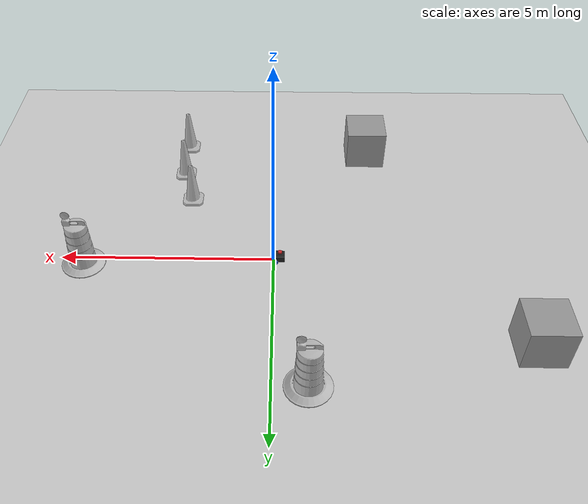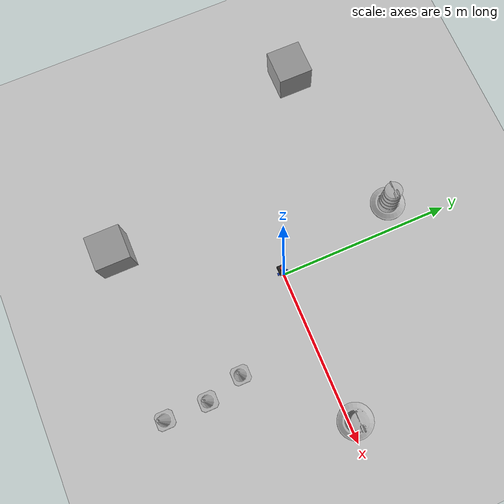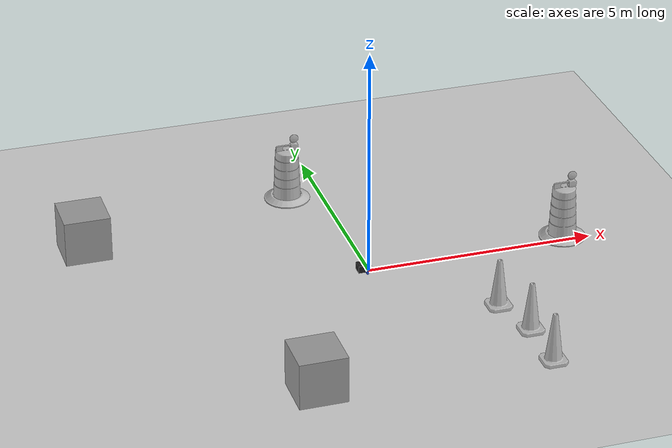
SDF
<sdf version="1.7">
 <world name="default">
  <light name="sun" type="directional">
   <pose>0 0 10 0 -0 0</pose>
   <diffuse>0.8 0.8 0.8 1</diffuse>
   <specular>0.2 0.2 0.2 1</specular>
   <attenuation>
    <range>1000</range>
    <constant>0.9</constant>
    <linear>0.01</linear>
    <quadratic>0.001</quadratic>
   </attenuation>
   <direction>-0.5 0.1 -0.9</direction>
   <spot><inner_angle>0</inner_angle><outer_angle>0</outer_angle><falloff>0</falloff></spot>
  </light>
  <model name="ground_plane">
   <static>1</static>
   <link name="link">
    <collision name="collision">
     <geometry><plane><normal>0 0 1</normal><size>100 100</size></plane></geometry>
     <surface>
      <contact><collide_bitmask>65535</collide_bitmask></contact>
      <friction><ode><mu>100</mu><mu2>50</mu2></ode></friction>
     </surface>
    </collision>
    <visual name="visual">
     <cast_shadows>0</cast_shadows>
     <geometry><plane><normal>0 0 1</normal><size>100 100</size></plane></geometry>
     <material>
      <script><uri>file://media/materials/scripts/gazebo.material</uri><name>Gazebo/Grey</name></script>
     </material>
    </visual>
   </link>
  </model>
  <gravity>0 0 -9.8</gravity>
  <magnetic_field>6e-06 2.3e-05 -4.2e-05</magnetic_field>
  <atmosphere type="adiabatic"/>
  <physics type="ode">
   <max_step_size>0.001</max_step_size>
   <real_time_factor>1</real_time_factor>
   <real_time_update_rate>1000</real_time_update_rate>
  </physics>
  <scene><ambient>0.4 0.4 0.4 1</ambient><background>0.7 0.7 0.7 1</background><shadows>1</shadows></scene>
  <spherical_coordinates>
   <surface_model>EARTH_WGS84</surface_model>
   <latitude_deg>0</latitude_deg>
   <longitude_deg>0</longitude_deg>
   <elevation>0</elevation>
   <heading_deg>0</heading_deg>
  </spherical_coordinates>
  <model name="Construction Barrel">
   <link name="link">
    <inertial>
     <pose>0 0 0.4 0 -0 0</pose>
     <mass>500</mass>
     <inertia><ixx>51.2096</ixx><iyy>51.2096</iyy><izz>25</izz><ixy>0</ixy><ixz>0</ixz><iyz>0</iyz></inertia>
    </inertial>
    <collision name="collision">
     <geometry><mesh><uri>model://construction_barrel/meshes/construction_barrel.dae</uri></mesh></geometry>
    </collision>
    <visual name="visual">
     <geometry><mesh><uri>model://construction_barrel/meshes/construction_barrel.dae</uri></mesh></geometry>
    </visual>
   </link>
   <pose>-0.750686 3.60602 -1e-06 0 5e-06 -0.002246</pose>
  </model>
  <model name="Construction Barrel_0">
   <link name="link">
    <inertial>
     <pose>0 0 0.4 0 -0 0</pose>
     <mass>500</mass>
     <inertia><ixx>51.2096</ixx><iyy>51.2096</iyy><izz>25</izz><ixy>0</ixy><ixz>0</ixz><iyz>0</iyz></inertia>
    </inertial>
    <collision name="collision">
     <geometry><mesh><uri>model://construction_barrel/meshes/construction_barrel.dae</uri></mesh></geometry>
    </collision>
    <visual name="visual">
     <geometry><mesh><uri>model://construction_barrel/meshes/construction_barrel.dae</uri></mesh></geometry>
    </visual>
   </link>
   <pose>4.44163 0.174305 0 0 0 -3.7e-05</pose>
  </model>
  <model name="Construction Cone_2">
   <link name="link">
    <collision name="collision">
     <geometry>
      <mesh><scale>10 10 10</scale><uri>model://construction_cone/meshes/construction_cone.dae</uri></mesh>
     </geometry>
    </collision>
    <visual name="visual">
     <geometry>
      <mesh><scale>10 10 10</scale><uri>model://construction_cone/meshes/construction_cone.dae</uri></mesh>
     </geometry>
    </visual>
    <inertial>
     <inertia><ixx>1</ixx><ixy>0</ixy><ixz>0</ixz><iyy>1</iyy><iyz>0</iyz><izz>1</izz></inertia>
     <mass>1</mass>
    </inertial>
   </link>
   <pose>2.09724 -2.18232 -0 0 -0 0</pose>
  </model>
  <model name="Construction Cone_5">
   <link name="link">
    <collision name="collision">
     <geometry>
      <mesh><scale>10 10 10</scale><uri>model://construction_cone/meshes/construction_cone.dae</uri></mesh>
     </geometry>
    </collision>
    <visual name="visual">
     <geometry>
      <mesh><scale>10 10 10</scale><uri>model://construction_cone/meshes/construction_cone.dae</uri></mesh>
     </geometry>
    </visual>
    <inertial>
     <inertia><ixx>1</ixx><ixy>0</ixy><ixz>0</ixz><iyy>1</iyy><iyz>0</iyz><izz>1</izz></inertia>
     <mass>1</mass>
    </inertial>
   </link>
   <pose>2.38815 -3.2576 -0 0 -1e-06 0</pose>
  </model>
  <model name="Construction Cone_6">
   <link name="link">
    <collision name="collision">
     <geometry>
      <mesh><scale>10 10 10</scale><uri>model://construction_cone/meshes/construction_cone.dae</uri></mesh>
     </geometry>
    </collision>
    <visual name="visual">
     <geometry>
      <mesh><scale>10 10 10</scale><uri>model://construction_cone/meshes/construction_cone.dae</uri></mesh>
     </geometry>
    </visual>
    <inertial>
     <inertia><ixx>1</ixx><ixy>0</ixy><ixz>0</ixz><iyy>1</iyy><iyz>0</iyz><izz>1</izz></inertia>
     <mass>1</mass>
    </inertial>
   </link>
   <pose>2.39316 -4.49605 -0 0 -0 0</pose>
  </model>
  <model name="my_bot">
   <link name="base_link">
    <inertial>
     <pose>-0.069279 0 0.091303 0 -0 0</pose>
     <mass>0.61</mass>
     <inertia>
      <ixx>0.00488911</ixx>
      <ixy>0</ixy>
      <ixz>0.000187143</ixz>
      <iyy>0.00563201</iyy>
      <iyz>0</iyz>
      <izz>0.00479238</izz>
     </inertia>
    </inertial>
    <collision name="base_link_fixed_joint_lump__chassis_collision">
     <pose>-0.065 0 0.07 0 -0 0</pose>
     <geometry><box><size>0.252 0.217 0.16</size></box></geometry>
    </collision>
    <collision name="base_link_fixed_joint_lump__caster_wheel_collision_1">
     <pose>-0.116 0 -0.0305 0 -0 0</pose>
     <geometry><sphere><radius>0.01</radius></sphere></geometry>
     <surface><friction><ode><mu>0.001</mu><mu2>0.001</mu2></ode></friction></surface>
    </collision>
    <collision name="base_link_fixed_joint_lump__laser_frame_collision_2">
     <pose>-0.086 0 0.21 0 -0 0</pose>
     <geometry><cylinder><length>0.04</length><radius>0.05</radius></cylinder></geometry>
    </collision>
    <visual name="base_link_fixed_joint_lump__chassis_visual">
     <pose>-0.065 0 0.07 0 -0 0</pose>
     <geometry><box><size>0.252 0.217 0.16</size></box></geometry>
     <material>
      <script><name>Gazebo/Black</name><uri>file://media/materials/scripts/gazebo.material</uri></script>
     </material>
    </visual>
    <visual name="base_link_fixed_joint_lump__camera_link_visual_1">
     <pose>0.114 0 0.07 0 -0 0</pose>
     <geometry><box><size>0.01 0.03 0.03</size></box></geometry>
     <material>
      <script><name>Gazebo/Red</name><uri>file://media/materials/scripts/gazebo.material</uri></script>
     </material>
    </visual>
    <visual name="base_link_fixed_joint_lump__caster_wheel_visual_2">
     <pose>-0.116 0 -0.0305 0 -0 0</pose>
     <geometry><sphere><radius>0.01</radius></sphere></geometry>
     <material>
      <script><name>Gazebo/Black</name><uri>file://media/materials/scripts/gazebo.material</uri></script>
     </material>
    </visual>
    <visual name="base_link_fixed_joint_lump__laser_frame_visual_3">
     <pose>-0.086 0 0.21 0 -0 0</pose>
     <geometry><cylinder><length>0.04</length><radius>0.05</radius></cylinder></geometry>
     <material>
      <script><name>Gazebo/Red</name><uri>file://media/materials/scripts/gazebo.material</uri></script>
     </material>
    </visual>
    <visual name="base_link_fixed_joint_lump__laser_frame_visual_4">
     <pose>-0.086 0 0.16 0 -0 0</pose>
     <geometry><cylinder><length>0.1</length><radius>0.01</radius></cylinder></geometry>
     <material>
      <script><name>Gazebo/Red</name><uri>file://media/materials/scripts/gazebo.material</uri></script>
     </material>
    </visual>
    <sensor name="camera" type="camera">
     <visualize>1</visualize>
     <update_rate>10</update_rate>
     <camera>
      <horizontal_fov>1.089</horizontal_fov>
      <image><format>R8G8B8</format><width>640</width><height>480</height></image>
      <clip><near>0.05</near><far>8</far></clip>
     </camera>
     <plugin name="camera_controller" filename="libgazebo_ros_camera.so">
      <frame_name>camera_link_optical</frame_name>
      <min_depth>0.1</min_depth>
      <max_depth>100.0</max_depth>
     </plugin>
     <pose>0.114 0 0.07 0 -0 0</pose>
    </sensor>
    <sensor name="laser" type="ray">
     <visualize>1</visualize>
     <update_rate>10</update_rate>
     <ray>
      <scan>
       <horizontal>
        <samples>360</samples>
        <min_angle>-3.14</min_angle>
        <max_angle>3.14</max_angle>
        <resolution>1</resolution>
       </horizontal>
       <vertical><samples>1</samples><min_angle>0</min_angle><max_angle>0</max_angle></vertical>
      </scan>
      <range><min>0.3</min><max>12</max></range>
     </ray>
     <plugin name="laser_controller" filename="libgazebo_ros_ray_sensor.so">
      <ros><argument>~/out:=scan</argument></ros>
      <output_type>sensor_msgs/LaserScan</output_type>
      <frame_name>laser_frame</frame_name>
     </plugin>
     <pose>-0.086 0 0.21 0 -0 0</pose>
    </sensor>
   </link>
   <joint name="left_wheel_joint" type="revolute">
    <pose relative_to="base_link">0 0.135 0 -1.5708 0 0</pose>
    <parent>base_link</parent>
    <child>left_wheel</child>
    <axis>
     <xyz>0 0 1</xyz>
     <limit><lower>-1e+16</lower><upper>1e+16</upper></limit>
     <dynamics><spring_reference>0</spring_reference><spring_stiffness>0</spring_stiffness></dynamics>
    </axis>
   </joint>
   <link name="left_wheel">
    <pose relative_to="left_wheel_joint">0 0 0 0 -0 0</pose>
    <inertial>
     <mass>0.05</mass>
     <inertia>
      <ixx>2.75073e-05</ixx>
      <ixy>0</ixy>
      <ixz>0</ixz>
      <iyy>2.75073e-05</iyy>
      <iyz>0</iyz>
      <izz>4.10062e-05</izz>
     </inertia>
    </inertial>
    <collision name="left_wheel_collision">
     <geometry><sphere><radius>0.0405</radius></sphere></geometry>
    </collision>
    <visual name="left_wheel_visual">
     <geometry><cylinder><length>0.041</length><radius>0.0405</radius></cylinder></geometry>
     <material>
      <script><name>Gazebo/Blue</name><uri>file://media/materials/scripts/gazebo.material</uri></script>
     </material>
    </visual>
   </link>
   <joint name="right_wheel_joint" type="revolute">
    <pose relative_to="base_link">0 -0.135 0 1.5708 -0 0</pose>
    <parent>base_link</parent>
    <child>right_wheel</child>
    <axis>
     <xyz>0 0 -1</xyz>
     <limit><lower>-1e+16</lower><upper>1e+16</upper></limit>
     <dynamics><spring_reference>0</spring_reference><spring_stiffness>0</spring_stiffness></dynamics>
    </axis>
   </joint>
   <link name="right_wheel">
    <pose relative_to="right_wheel_joint">0 0 0 0 -0 0</pose>
    <inertial>
     <mass>0.05</mass>
     <inertia>
      <ixx>2.75073e-05</ixx>
      <ixy>0</ixy>
      <ixz>0</ixz>
      <iyy>2.75073e-05</iyy>
      <iyz>0</iyz>
      <izz>4.10062e-05</izz>
     </inertia>
    </inertial>
    <collision name="right_wheel_collision">
     <geometry><sphere><radius>0.0405</radius></sphere></geometry>
    </collision>
    <visual name="right_wheel_visual">
     <geometry><cylinder><length>0.041</length><radius>0.0405</radius></cylinder></geometry>
     <material>
      <script><name>Gazebo/Blue</name><uri>file://media/materials/scripts/gazebo.material</uri></script>
     </material>
    </visual>
   </link>
   <static>0</static>
   <plugin name="gazebo_ros2_control" filename="libgazebo_ros2_control.so">
    <parameters>/home/imertyuz/dev_ws/install/adep/share/adep/config/my_controllers.yaml</parameters>
   </plugin>
   <pose>-0.066915 7.3e-05 0.040498 1.2e-05 1.7e-05 0.002497</pose>
  </model>
  <model name="unit_box">
   <pose>-5.55595 2.57237 0.499995 1e-05 -0 0</pose>
   <link name="link">
    <inertial>
     <mass>1</mass>
     <inertia>
      <ixx>0.166667</ixx>
      <ixy>0</ixy>
      <ixz>0</ixz>
      <iyy>0.166667</iyy>
      <iyz>0</iyz>
      <izz>0.166667</izz>
     </inertia>
    </inertial>
    <collision name="collision"><geometry><box><size>1 1 1</size></box></geometry></collision>
    <visual name="visual">
     <geometry><box><size>1 1 1</size></box></geometry>
     <material>
      <script><name>Gazebo/Grey</name><uri>file://media/materials/scripts/gazebo.material</uri></script>
     </material>
    </visual>
   </link>
  </model>
  <model name="unit_box_0">
   <pose>-2.40716 -4.17702 0.5 0 -0 0</pose>
   <link name="link">
    <inertial>
     <mass>1</mass>
     <inertia>
      <ixx>0.166667</ixx>
      <ixy>0</ixy>
      <ixz>0</ixz>
      <iyy>0.166667</iyy>
      <iyz>0</iyz>
      <izz>0.166667</izz>
     </inertia>
    </inertial>
    <collision name="collision"><geometry><box><size>1 1 1</size></box></geometry></collision>
    <visual name="visual">
     <geometry><box><size>1 1 1</size></box></geometry>
     <material>
      <script><name>Gazebo/Grey</name><uri>file://media/materials/scripts/gazebo.material</uri></script>
     </material>
    </visual>
   </link>
  </model>
 </world>
</sdf>
